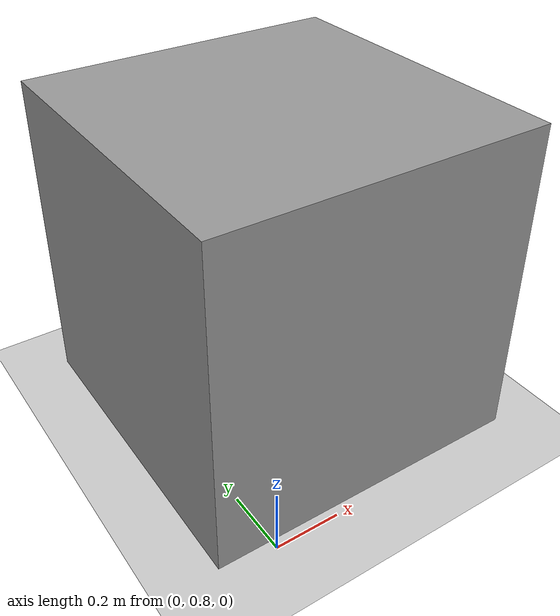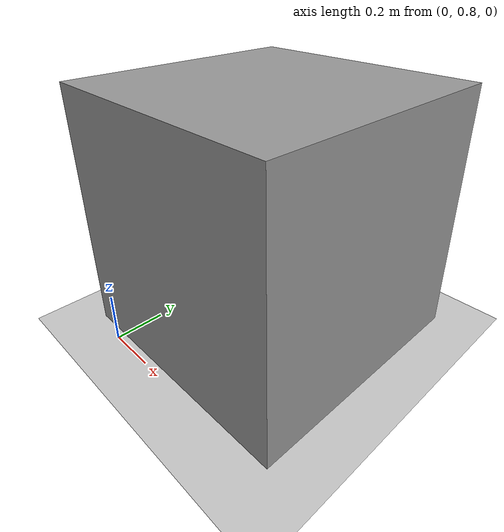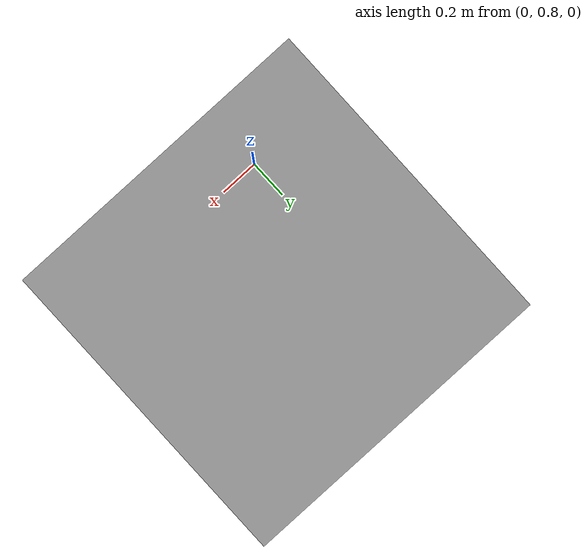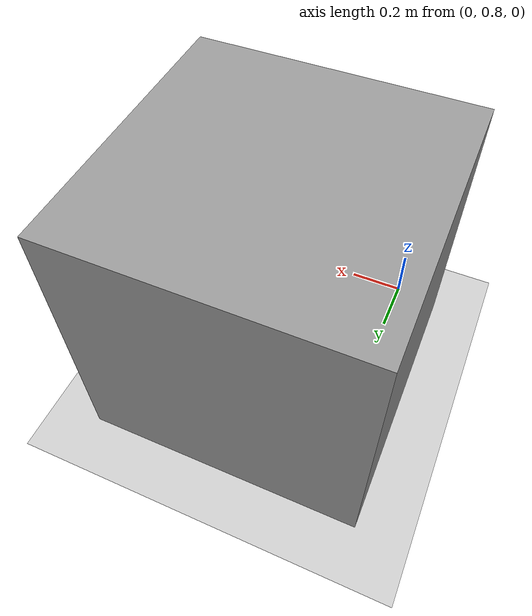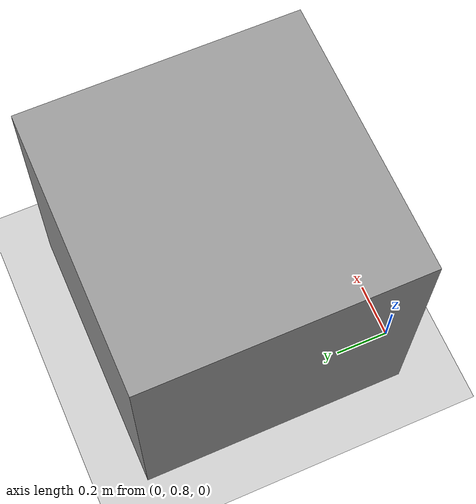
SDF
<?xml version="1.0" encoding="UTF-8"?>
<sdf version="1.6">
  <world name="default">
    <!-- A global light source -->
    <include>
      <uri>model://sun</uri>
    </include>
    <!-- A ground plane -->
    <include>
      <uri>model://ground_plane</uri>
    </include>

	<model name='unit_box'>
      	<pose frame=''>0.337643 1.32812 0.5 0 -0 0</pose>
      	<link name='link'>
        <inertial>
          <mass>1</mass>
          <inertia>
            <ixx>0.166667</ixx>
            <ixy>0</ixy>
            <ixz>0</ixz>
            <iyy>0.166667</iyy>
            <iyz>0</iyz>
            <izz>0.166667</izz>
          </inertia>
        </inertial>
        <collision name='collision'>
          <geometry>
            <box>
              <size>1 1 1</size>
            </box>
          </geometry>
          <max_contacts>10</max_contacts>
          <surface>
            <contact>
              <ode/>
            </contact>
            <bounce/>
            <friction>
              <torsional>
                <ode/>
              </torsional>
              <ode/>
            </friction>
          </surface>
        </collision>
        <visual name='visual'>
          <geometry>
            <box>
              <size>1 1 1</size>
            </box>
          </geometry>
          <material>
            <script>
              <name>Gazebo/Grey</name>
              <uri>file://media/materials/scripts/gazebo.material</uri>
            </script>
          </material>
        </visual>
        <self_collide>0</self_collide>
        <kinematic>0</kinematic>
      </link>
    </model>

  </world>
</sdf>
